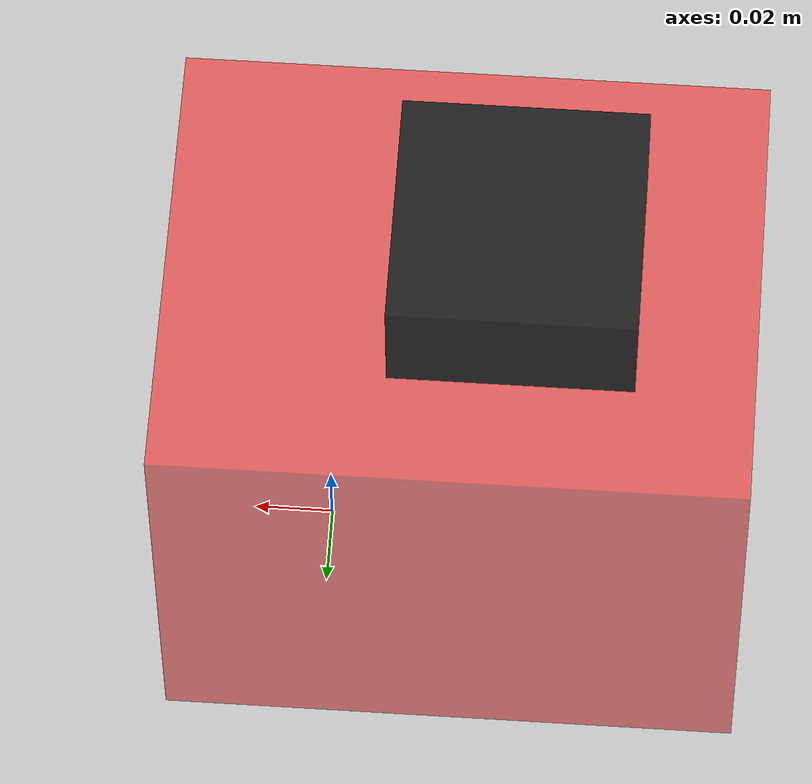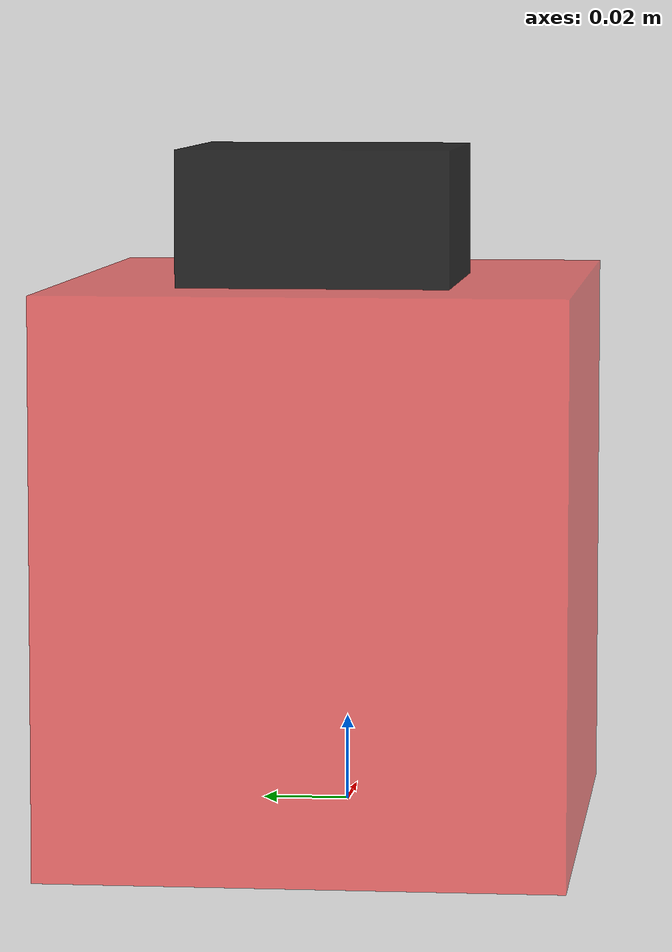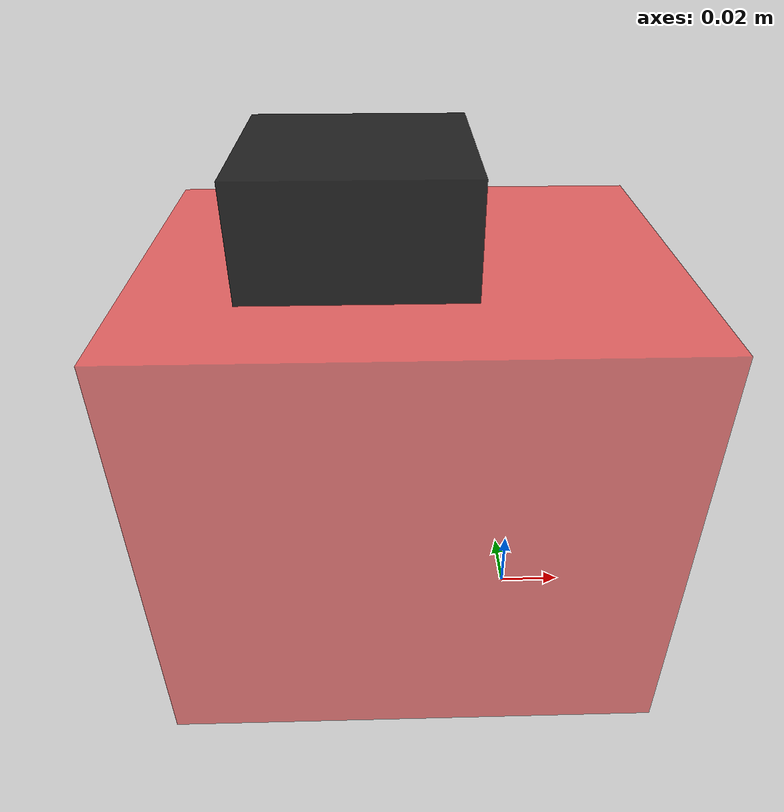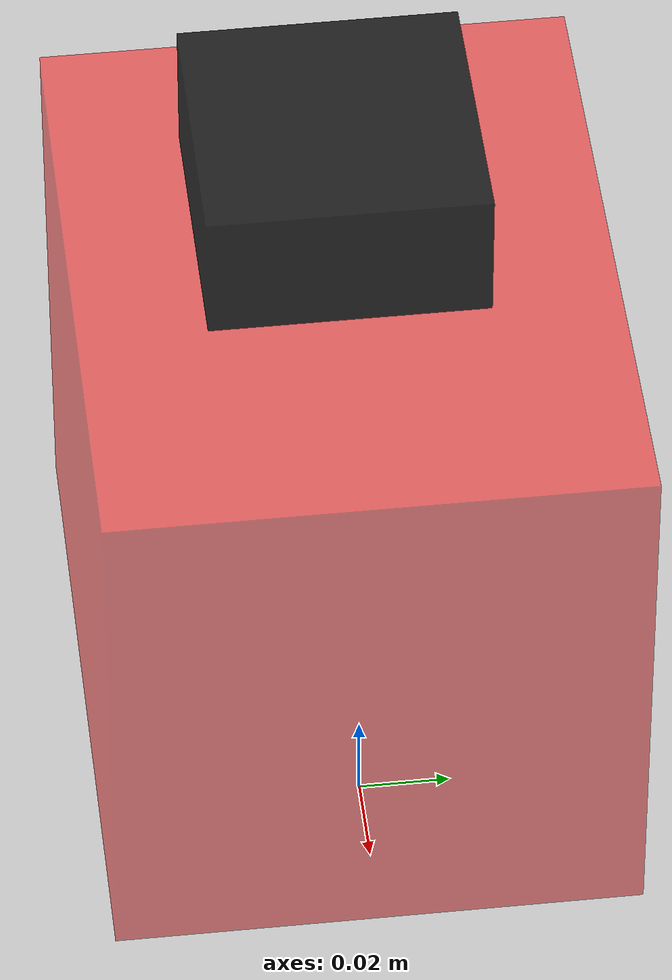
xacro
<?xml version="1.0"?>
<robot xmlns:xacro="http://www.ros.org/wiki/xacro">
  <xacro:property name="body_d" value="0.145" />
  <xacro:property name="body_w" value="0.115" />
  <xacro:property name="body_h" value="0.1265" />
  <xacro:property name="body_x" value="${0.0385-body_d/2}" />
  <xacro:property name="body_z" value="${body_h/2}" />

  <link name="base_link">
    <collision>
      <origin rpy="0 0 0" xyz="${body_x} 0 ${body_z}"/>
      <geometry>
        <box size="${body_d} ${body_w} ${body_h}"/>
      </geometry>
    </collision>
    <visual>
      <origin rpy="0 0 0" xyz="${body_x} 0 ${body_z}"/>
      <geometry>
        <box size="${body_d} ${body_w} ${body_h}"/>
      </geometry>
      <material name="vehicle_mat">
        <color rgba="1.0 0.0 0.0 0.5"/>
      </material>
    </visual>
  </link>

  <xacro:property name="laser_d" value="0.06" />
  <xacro:property name="laser_w" value="0.06" />
  <xacro:property name="laser_h" value="0.06" />
  <xacro:property name="laser_x" value="-0.0475" />
  <xacro:property name="laser_z" value="${body_h}" />

  <joint name="laser_joint" type="fixed">
    <origin xyz="${laser_x} 0 ${laser_z}" rpy="0 0 0"/>
    <parent link="base_link"/>
    <child link="base_laser_link"/>
  </joint>

  <link name="base_laser_link">
    <collision>
      <origin rpy="0 0 0" xyz="0 0 0"/>
      <geometry>
        <box size="${laser_d} ${laser_w} ${laser_h}"/>
      </geometry>
    </collision>
    <visual>
      <origin rpy="0 0 0" xyz="0 0 0"/>
      <geometry>
        <box size="${laser_d} ${laser_w} ${laser_h}"/>
      </geometry>
      <material name="laser_mat">
        <color rgba="0.0 0.0 0.0 0.8"/>
      </material>
    </visual>
  </link>
</robot>
